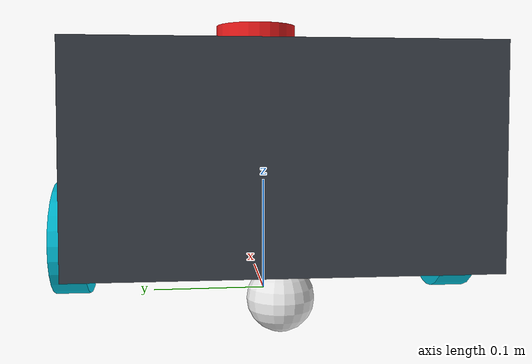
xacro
<?xml version="1.0"?>
<robot name="sentinel" xmlns:xacro="http://www.ros.org/wiki/xacro">

  <!-- Core Inertial Formulas -->
  <xacro:include filename="inertial_macros.xacro"/>

  <!-- Mobile Robot Chassis, Wheels, and Kinematics -->
  <xacro:include filename="chassis.xacro"/>

  <!-- Sensors -->
  <xacro:include filename="lidar.xacro"/>
  <xacro:include filename="camera.xacro"/>
  <xacro:include filename="imu.xacro"/>

  <!-- Gazebo Simulation Plugins -->
  <xacro:include filename="gazebo.xacro"/>

</robot>

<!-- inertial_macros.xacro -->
<robot xmlns:xacro="http://www.ros.org/wiki/xacro">

  <!-- Inertia macro for a solid cuboid (box) -->
  <xacro:macro name="inertial_box" params="mass x y z *origin">
    <inertial>
      <xacro:insert_block name="origin"/>
      <mass value="${mass}"/>
      <inertia ixx="${(1/12) * mass * (y*y + z*z)}" ixy="0.0" ixz="0.0"
               iyy="${(1/12) * mass * (x*x + z*z)}" iyz="0.0"
               izz="${(1/12) * mass * (x*x + y*y)}"/>
    </inertial>
  </xacro:macro>

  <!-- Inertia macro for a cylinder (aligned along Z axis) -->
  <xacro:macro name="inertial_cylinder" params="mass length radius *origin">
    <inertial>
      <xacro:insert_block name="origin"/>
      <mass value="${mass}"/>
      <inertia ixx="${(1/12) * mass * (3*radius*radius + length*length)}" ixy="0.0" ixz="0.0"
               iyy="${(1/12) * mass * (3*radius*radius + length*length)}" iyz="0.0"
               izz="${(1/2) * mass * (radius*radius)}"/>
    </inertial>
  </xacro:macro>

  <!-- Inertia macro for a solid sphere -->
  <xacro:macro name="inertial_sphere" params="mass radius *origin">
    <inertial>
      <xacro:insert_block name="origin"/>
      <mass value="${mass}"/>
      <inertia ixx="${(2/5) * mass * (radius*radius)}" ixy="0.0" ixz="0.0"
               iyy="${(2/5) * mass * (radius*radius)}" iyz="0.0"
               izz="${(2/5) * mass * (radius*radius)}"/>
    </inertial>
  </xacro:macro>

</robot>

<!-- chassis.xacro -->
<robot xmlns:xacro="http://www.ros.org/wiki/xacro">

  <xacro:include filename="inertial_macros.xacro"/>

  <!-- Robot physical dimensions (meters, kg) -->
  <xacro:property name="chassis_length" value="0.40"/>
  <xacro:property name="chassis_width"  value="0.30"/>
  <xacro:property name="chassis_height" value="0.16"/>
  <xacro:property name="chassis_mass"   value="5.0"/>

  <xacro:property name="wheel_radius"   value="0.05"/>
  <xacro:property name="wheel_width"    value="0.03"/>
  <xacro:property name="wheel_mass"     value="0.5"/>
  <xacro:property name="wheel_separation" value="0.34"/>

  <xacro:property name="caster_radius"  value="0.025"/>
  <xacro:property name="caster_mass"    value="0.25"/>
  <xacro:property name="caster_x_offset" value="-0.13"/>

  <!-- BASE_FOOTPRINT LINK (Contact point with ground directly below base_link) -->
  <link name="base_footprint"/>

  <!-- BASE_LINK (Midpoint between the two drive wheels at axle height) -->
  <joint name="base_footprint_joint" type="fixed">
    <parent link="base_footprint"/>
    <child link="base_link"/>
    <origin xyz="0 0 ${wheel_radius}" rpy="0 0 0"/>
  </joint>

  <link name="base_link">
    <!-- Base link is a reference frame with zero mass; chassis attaches to it -->
  </link>

  <!-- CHASSIS LINK -->
  <joint name="chassis_joint" type="fixed">
    <parent link="base_link"/>
    <child link="chassis"/>
    <origin xyz="0 0 0" rpy="0 0 0"/>
  </joint>

  <link name="chassis">
    <visual>
      <origin xyz="0.02 0 ${chassis_height/2}" rpy="0 0 0"/>
      <geometry>
        <box size="${chassis_length} ${chassis_width} ${chassis_height}"/>
      </geometry>
      <material name="sentinel_dark_grey">
        <color rgba="0.2 0.22 0.25 1.0"/>
      </material>
    </visual>
    <collision>
      <origin xyz="0.02 0 ${chassis_height/2}" rpy="0 0 0"/>
      <geometry>
        <box size="${chassis_length} ${chassis_width} ${chassis_height}"/>
      </geometry>
    </collision>
    <xacro:inertial_box mass="${chassis_mass}" x="${chassis_length}" y="${chassis_width}" z="${chassis_height}">
      <origin xyz="0.02 0 ${chassis_height/2}" rpy="0 0 0"/>
    </xacro:inertial_box>
  </link>

  <!-- LEFT DRIVE WHEEL -->
  <joint name="left_wheel_joint" type="continuous">
    <parent link="base_link"/>
    <child link="left_wheel"/>
    <origin xyz="0 ${wheel_separation/2} 0" rpy="-${pi/2} 0 0"/>
    <axis xyz="0 0 1"/>
  </joint>

  <link name="left_wheel">
    <visual>
      <geometry>
        <cylinder radius="${wheel_radius}" length="${wheel_width}"/>
      </geometry>
      <material name="sentinel_cyan">
        <color rgba="0.0 0.75 0.85 1.0"/>
      </material>
    </visual>
    <collision>
      <geometry>
        <sphere radius="${wheel_radius}"/>
      </geometry>
    </collision>
    <xacro:inertial_cylinder mass="${wheel_mass}" length="${wheel_width}" radius="${wheel_radius}">
      <origin xyz="0 0 0" rpy="0 0 0"/>
    </xacro:inertial_cylinder>
  </link>

  <!-- RIGHT DRIVE WHEEL -->
  <joint name="right_wheel_joint" type="continuous">
    <parent link="base_link"/>
    <child link="right_wheel"/>
    <origin xyz="0 -${wheel_separation/2} 0" rpy="${pi/2} 0 0"/>
    <axis xyz="0 0 -1"/>
  </joint>

  <link name="right_wheel">
    <visual>
      <geometry>
        <cylinder radius="${wheel_radius}" length="${wheel_width}"/>
      </geometry>
      <material name="sentinel_cyan">
        <color rgba="0.0 0.75 0.85 1.0"/>
      </material>
    </visual>
    <collision>
      <geometry>
        <sphere radius="${wheel_radius}"/>
      </geometry>
    </collision>
    <xacro:inertial_cylinder mass="${wheel_mass}" length="${wheel_width}" radius="${wheel_radius}">
      <origin xyz="0 0 0" rpy="0 0 0"/>
    </xacro:inertial_cylinder>
  </link>

  <!-- REAR CASTER WHEEL (Frictionless support) -->
  <joint name="caster_wheel_joint" type="fixed">
    <parent link="base_link"/>
    <child link="caster_wheel"/>
    <origin xyz="${caster_x_offset} 0 ${-wheel_radius + caster_radius}" rpy="0 0 0"/>
  </joint>

  <link name="caster_wheel">
    <visual>
      <geometry>
        <sphere radius="${caster_radius}"/>
      </geometry>
      <material name="sentinel_white">
        <color rgba="0.9 0.9 0.9 1.0"/>
      </material>
    </visual>
    <collision>
      <geometry>
        <sphere radius="${caster_radius}"/>
      </geometry>
    </collision>
    <xacro:inertial_sphere mass="${caster_mass}" radius="${caster_radius}">
      <origin xyz="0 0 0" rpy="0 0 0"/>
    </xacro:inertial_sphere>
  </link>

</robot>

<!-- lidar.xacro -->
<robot xmlns:xacro="http://www.ros.org/wiki/xacro">

  <xacro:include filename="inertial_macros.xacro"/>

  <xacro:property name="lidar_radius" value="0.04"/>
  <xacro:property name="lidar_length" value="0.04"/>
  <xacro:property name="lidar_mass"   value="0.15"/>

  <!-- LiDAR Joint: Mounted on top of the chassis -->
  <joint name="laser_joint" type="fixed">
    <parent link="chassis"/>
    <child link="laser_frame"/>
    <origin xyz="0.08 0 0.18" rpy="0 0 0"/>
  </joint>

  <link name="laser_frame">
    <visual>
      <geometry>
        <cylinder radius="${lidar_radius}" length="${lidar_length}"/>
      </geometry>
      <material name="sentinel_red">
        <color rgba="0.9 0.1 0.1 1.0"/>
      </material>
    </visual>
    <collision>
      <geometry>
        <cylinder radius="${lidar_radius}" length="${lidar_length}"/>
      </geometry>
    </collision>
    <xacro:inertial_cylinder mass="${lidar_mass}" length="${lidar_length}" radius="${lidar_radius}">
      <origin xyz="0 0 0" rpy="0 0 0"/>
    </xacro:inertial_cylinder>
  </link>

  <!-- Gazebo Sensor Definition for 2D LiDAR (Harmonic / Sim 8) -->
  <gazebo reference="laser_frame">
    <sensor name="lidar" type="gpu_lidar">
      <always_on>true</always_on>
      <visualize>true</visualize>
      <update_rate>10.0</update_rate>
      <topic>/scan</topic>
      <gz_frame_id>laser_frame</gz_frame_id>
      <lidar>
        <scan>
          <horizontal>
            <samples>360</samples>
            <resolution>1</resolution>
            <min_angle>-3.14159265</min_angle>
            <max_angle>3.14159265</max_angle>
          </horizontal>
        </scan>
        <range>
          <min>0.12</min>
          <max>12.0</max>
          <resolution>0.01</resolution>
        </range>
        <noise>
          <type>gaussian</type>
          <mean>0.0</mean>
          <stddev>0.01</stddev>
        </noise>
      </lidar>
    </sensor>
  </gazebo>

</robot>

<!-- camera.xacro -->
<robot xmlns:xacro="http://www.ros.org/wiki/xacro">

  <xacro:include filename="inertial_macros.xacro"/>

  <xacro:property name="cam_x" value="0.03"/>
  <xacro:property name="cam_y" value="0.10"/>
  <xacro:property name="cam_z" value="0.03"/>
  <xacro:property name="cam_mass" value="0.08"/>

  <!-- Physical Camera Mount on the front bumper of the chassis -->
  <joint name="camera_joint" type="fixed">
    <parent link="chassis"/>
    <child link="camera_link"/>
    <origin xyz="0.22 0 0.10" rpy="0 0 0"/>
  </joint>

  <link name="camera_link">
    <visual>
      <geometry>
        <box size="${cam_x} ${cam_y} ${cam_z}"/>
      </geometry>
      <material name="sentinel_blue">
        <color rgba="0.1 0.3 0.8 1.0"/>
      </material>
    </visual>
    <collision>
      <geometry>
        <box size="${cam_x} ${cam_y} ${cam_z}"/>
      </geometry>
    </collision>
    <xacro:inertial_box mass="${cam_mass}" x="${cam_x}" y="${cam_y}" z="${cam_z}">
      <origin xyz="0 0 0" rpy="0 0 0"/>
    </xacro:inertial_box>
  </link>

  <!-- Optical Link: Follows standard ROS optical frame conventions (Z-forward, X-right, Y-down) -->
  <joint name="camera_optical_joint" type="fixed">
    <parent link="camera_link"/>
    <child link="camera_optical_link"/>
    <origin xyz="0 0 0" rpy="-${pi/2} 0 -${pi/2}"/>
  </joint>

  <link name="camera_optical_link"/>

  <!-- Gazebo RGB-D Camera Sensor Definition (Harmonic / Sim 8) -->
  <gazebo reference="camera_link">
    <sensor name="camera" type="rgbd_camera">
      <always_on>true</always_on>
      <visualize>true</visualize>
      <update_rate>15.0</update_rate>
      <topic>/camera</topic>
      <gz_frame_id>camera_optical_link</gz_frame_id>
      <camera>
        <horizontal_fov>1.2</horizontal_fov>
        <image>
          <width>640</width>
          <height>480</height>
          <format>R8G8B8</format>
        </image>
        <clip>
          <near>0.2</near>
          <far>8.0</far>
        </clip>
        <optical_frame_id>camera_optical_link</optical_frame_id>
      </camera>
    </sensor>
  </gazebo>

</robot>

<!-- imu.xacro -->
<robot xmlns:xacro="http://www.ros.org/wiki/xacro">

  <!-- IMU Joint: centered in the robot body -->
  <joint name="imu_joint" type="fixed">
    <parent link="base_link"/>
    <child link="imu_link"/>
    <origin xyz="0 0 0.05" rpy="0 0 0"/>
  </joint>

  <link name="imu_link"/>

  <!-- Gazebo IMU Sensor Definition (Harmonic / Sim 8) -->
  <gazebo reference="imu_link">
    <sensor name="imu_sensor" type="imu">
      <always_on>true</always_on>
      <update_rate>50.0</update_rate>
      <visualize>false</visualize>
      <topic>/imu</topic>
      <gz_frame_id>imu_link</gz_frame_id>
      <imu>
        <angular_velocity>
          <x>
            <noise type="gaussian">
              <mean>0.0</mean>
              <stddev>2e-4</stddev>
            </noise>
          </x>
          <y>
            <noise type="gaussian">
              <mean>0.0</mean>
              <stddev>2e-4</stddev>
            </noise>
          </y>
          <z>
            <noise type="gaussian">
              <mean>0.0</mean>
              <stddev>2e-4</stddev>
            </noise>
          </z>
        </angular_velocity>
        <linear_acceleration>
          <x>
            <noise type="gaussian">
              <mean>0.0</mean>
              <stddev>1.7e-2</stddev>
            </noise>
          </x>
          <y>
            <noise type="gaussian">
              <mean>0.0</mean>
              <stddev>1.7e-2</stddev>
            </noise>
          </y>
          <z>
            <noise type="gaussian">
              <mean>0.0</mean>
              <stddev>1.7e-2</stddev>
            </noise>
          </z>
        </linear_acceleration>
      </imu>
    </sensor>
  </gazebo>

</robot>
